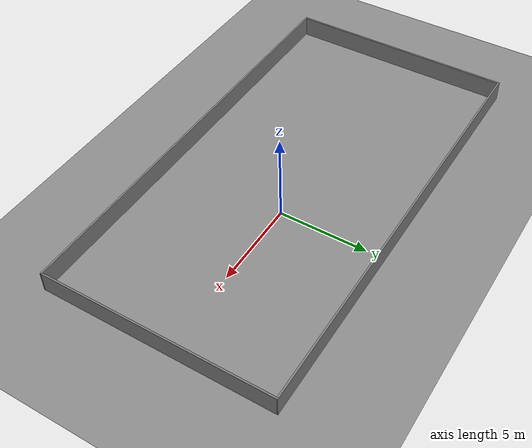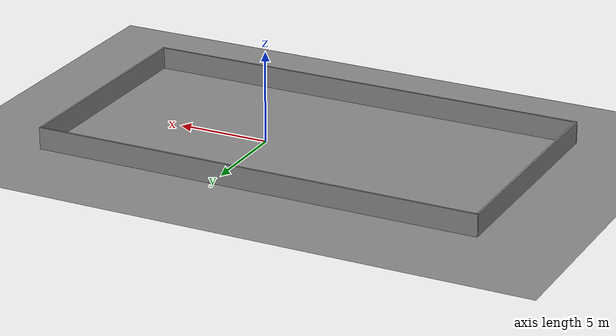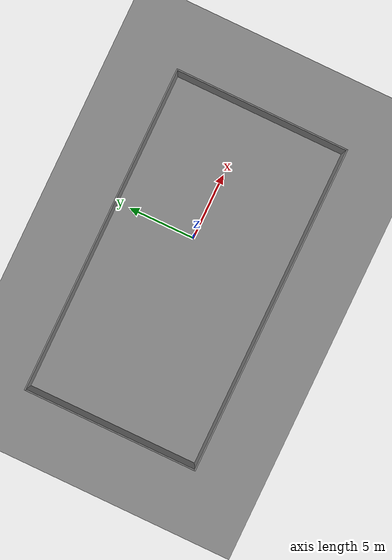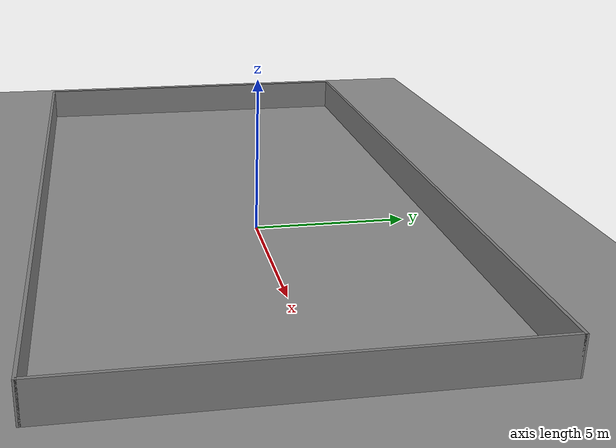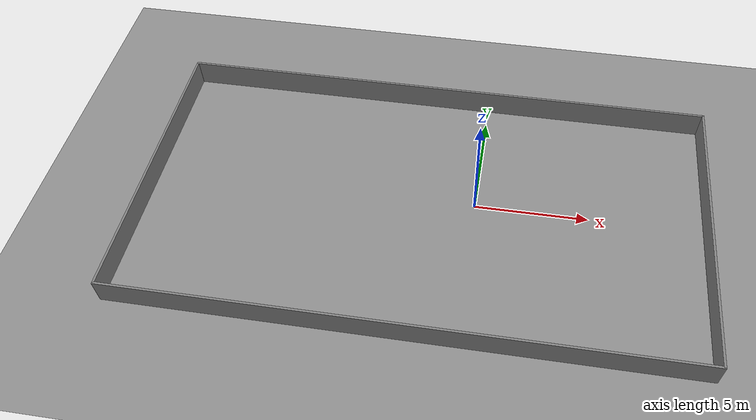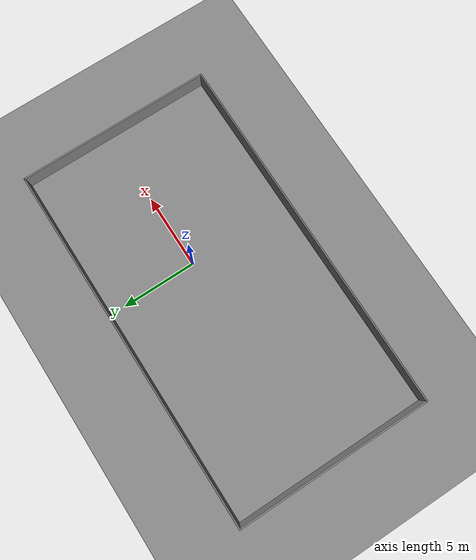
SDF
<sdf version="1.8">
 <world name="cafe">
  <physics name="4ms" type="ignored">
   <max_step_size>0.004</max_step_size>
   <real_time_factor>1</real_time_factor>
  </physics>
  <plugin filename="ignition-gazebo-physics-system" name="ignition::gazebo::systems::Physics"/>
  <plugin filename="ignition-gazebo-user-commands-system" name="ignition::gazebo::systems::UserCommands"/>
  <plugin filename="ignition-gazebo-scene-broadcaster-system" name="ignition::gazebo::systems::SceneBroadcaster"/>
  <plugin filename="ignition-gazebo-sensors-system" name="ignition::gazebo::systems::Sensors">
   <render_engine>ogre2</render_engine>
  </plugin>
  <plugin filename="ignition-gazebo-contact-system" name="ignition::gazebo::systems::Contact"/>
  <plugin filename="ignition-gazebo-imu-system" name="ignition::gazebo::systems::Imu"/>
  <light name="sun" type="directional">
   <pose>0 -18 8 0 0.523 1.5707</pose>
   <diffuse>0.8 0.8 0.8 1</diffuse>
   <specular>0.2 0.2 0.2 1</specular>
   <direction>0 0.5 -0.9</direction>
  </light>
  <light name="interior" type="point">
   <pose>0 -5 3.5 0 0 0</pose>
   <diffuse>0.85 0.82 0.75 1</diffuse>
   <specular>0.1 0.1 0.1 1</specular>
   <attenuation><range>20</range><linear>0.05</linear></attenuation>
  </light>
  <model name="ground_plane">
   <static>true</static>
   <link name="link">
    <collision name="c"><geometry><plane><normal>0 0 1</normal><size>50 50</size></plane></geometry></collision>
    <visual name="v">
     <geometry><plane><normal>0 0 1</normal><size>50 50</size></plane></geometry>
     <material><ambient>0.55 0.55 0.55 1</ambient><diffuse>0.55 0.55 0.55 1</diffuse></material>
    </visual>
   </link>
  </model>
  <model name="cafe_fence_n">
   <static>true</static>
   <pose>-2.25 6.0 0.6 0 0 0</pose>
   <link name="l">
    <collision name="c"><geometry><box><size>24.6 0.1 1.2</size></box></geometry></collision>
    <visual name="v">
     <geometry><box><size>24.6 0.1 1.2</size></box></geometry>
     <material><ambient>0.5 0.5 0.5 1</ambient><diffuse>0.5 0.5 0.5 1</diffuse></material>
    </visual>
   </link>
  </model>
  <model name="cafe_fence_s">
   <static>true</static>
   <pose>-2.25 -7.0 0.6 0 0 0</pose>
   <link name="l">
    <collision name="c"><geometry><box><size>24.6 0.1 1.2</size></box></geometry></collision>
    <visual name="v">
     <geometry><box><size>24.6 0.1 1.2</size></box></geometry>
     <material><ambient>0.5 0.5 0.5 1</ambient><diffuse>0.5 0.5 0.5 1</diffuse></material>
    </visual>
   </link>
  </model>
  <model name="cafe_fence_w">
   <static>true</static>
   <pose>-14.5 -0.5 0.6 0 0 0</pose>
   <link name="l">
    <collision name="c"><geometry><box><size>0.1 13.0 1.2</size></box></geometry></collision>
    <visual name="v">
     <geometry><box><size>0.1 13.0 1.2</size></box></geometry>
     <material><ambient>0.5 0.5 0.5 1</ambient><diffuse>0.5 0.5 0.5 1</diffuse></material>
    </visual>
   </link>
  </model>
  <model name="cafe_fence_e">
   <static>true</static>
   <pose>10.0 -0.5 0.6 0 0 0</pose>
   <link name="l">
    <collision name="c"><geometry><box><size>0.1 13.0 1.2</size></box></geometry></collision>
    <visual name="v">
     <geometry><box><size>0.1 13.0 1.2</size></box></geometry>
     <material><ambient>0.5 0.5 0.5 1</ambient><diffuse>0.5 0.5 0.5 1</diffuse></material>
    </visual>
   </link>
  </model>
  <model name="world_monitor_cam">
   <static>true</static>
   <pose>4.5 -5.5 3.5 0 0.62 3.1416</pose>
   <link name="link">
    <sensor name="monitor_camera" type="camera">
     <always_on>true</always_on>
     <update_rate>10</update_rate>
     <topic>world_monitor/image_raw</topic>
     <camera>
      <horizontal_fov>1.3</horizontal_fov>
      <image><width>960</width><height>540</height><format>R8G8B8</format></image>
      <clip><near>0.05</near><far>20.0</far></clip>
     </camera>
    </sensor>
   </link>
  </model>
 </world>
</sdf>
